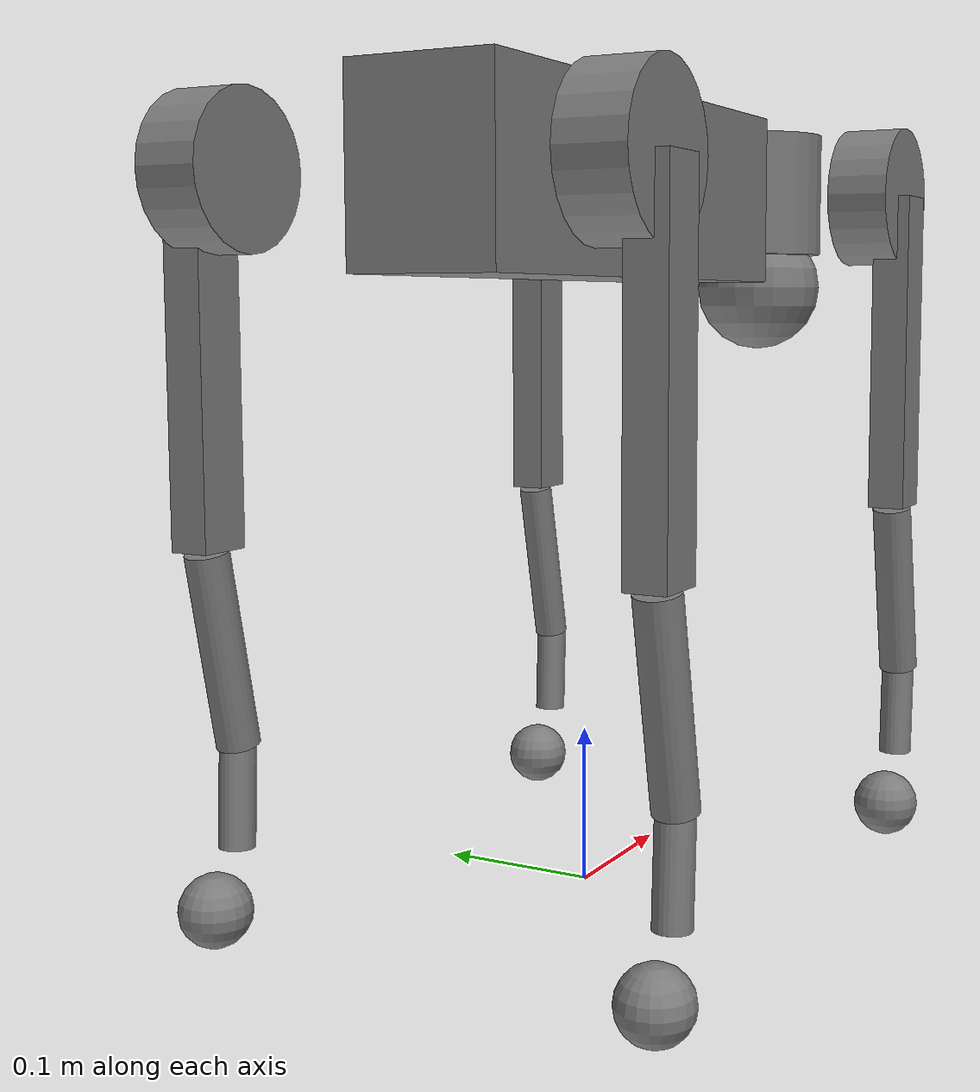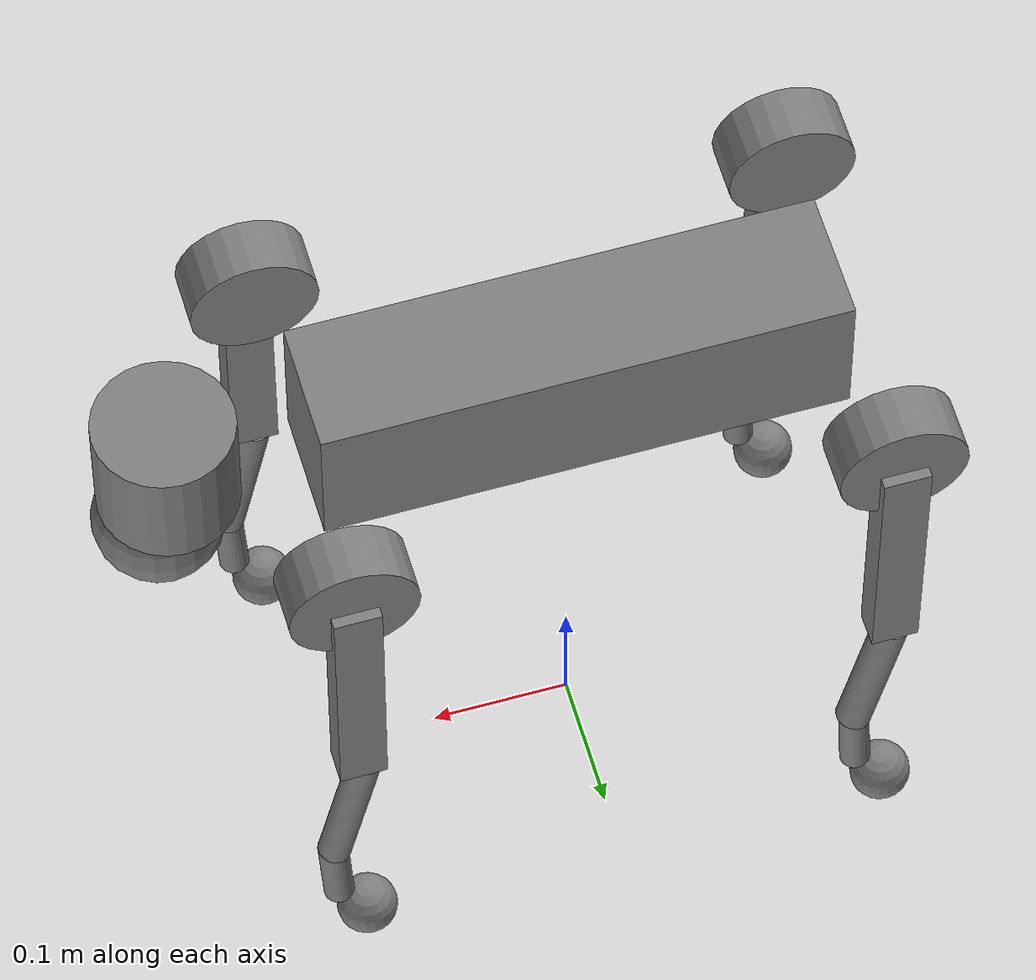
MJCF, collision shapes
<mujoco model="go2">
  <compiler angle="radian" autolimits="true"/>
  <option gravity="0 0 0"/>
  <option cone="elliptic" impratio="100"/>

  <default>
      <default class="abduction">
        <joint axis="1 0 0" range="-1.0472 1.0472" damping="2" armature="0.01" frictionloss="0.2"/>
        <geom friction="0.6" margin="0.001" condim="1"/>
        <motor ctrlrange="-23.7 23.7"/>
      </default>
      <default class="hip">
        <joint axis="0 1 0" damping="2" armature="0.01" frictionloss="0.2" range="-1.5708 3.4907"/>
        <geom friction="0.6" margin="0.001" condim="1"/>
        <motor ctrlrange="-23.7 23.7"/>
      </default>
      <default class="front_hip">
        <joint axis="0 1 0" damping="2" armature="0.01" frictionloss="0.2" range="-1.5708 3.4907"/>
        <geom friction="0.6" margin="0.001" condim="1"/>
        <motor ctrlrange="-23.7 23.7"/>
      </default>
      <default class="back_hip">
        <joint axis="0 1 0" damping="2" armature="0.01" frictionloss="0.2" range="-0.5236 4.5379"/>
        <geom friction="0.6" margin="0.001" condim="1"/>
        <motor ctrlrange="-23.7 23.7"/>
      </default>
      <default class="knee">
        <joint axis="0 1 0" damping="2" armature="0.01" frictionloss="0.2" range="-2.7227 -0.83776"/>
        <motor ctrlrange="-45.43 45.43"/>
        <geom friction="0.6" margin="0.001" condim="1"/>
      </default>
      <default class="visual">
        <geom type="mesh" contype="0" conaffinity="0" group="1" friction="0.6" margin="0.001" condim="1"/>
      </default>
      <default class="collision">
        <geom friction="0.6" margin="0.001" condim="1" group="0"/>
      </default>
      <default class="foot">
        <geom size="0.022" pos="-0.002 0 -0.213" priority="1" solimp="0.015 1 0.022" group="0" condim="6"
            friction="0.8 0.02 0.01" margin="0.001" />
      </default>
  </default>

  <asset>
    <material name="metal" rgba=".9 .95 .95 1"/>
    <material name="black" rgba="0 0 0 1"/>
    <material name="white" rgba="1 1 1 1"/>
    <material name="gray" rgba="0.671705 0.692426 0.774270 1"/>

    <mesh file="meshes/base_0.obj" name="base_0"/>
    <mesh file="meshes/base_1.obj" name="base_1"/>
    <mesh file="meshes/base_2.obj" name="base_2"/>
    <mesh file="meshes/base_3.obj" name="base_3"/>
    <mesh file="meshes/base_4.obj" name="base_4"/>
    <mesh file="meshes/hip_0.obj" name="hip_0"/>
    <mesh file="meshes/hip_1.obj" name="hip_1"/>
    <mesh file="meshes/thigh_0.obj" name="thigh_0"/>
    <mesh file="meshes/thigh_1.obj" name="thigh_1"/>
    <mesh file="meshes/thigh_mirror_0.obj" name="thigh_mirror_0"/>
    <mesh file="meshes/thigh_mirror_1.obj" name="thigh_mirror_1"/>
    <mesh file="meshes/calf_0.obj" name="calf_0"/>
    <mesh file="meshes/calf_1.obj" name="calf_1"/>
    <mesh file="meshes/calf_mirror_0.obj" name="calf_mirror_0"/>
    <mesh file="meshes/calf_mirror_1.obj" name="calf_mirror_1"/>
    <mesh file="meshes/foot.obj" name="foot"/>
  </asset>

  <worldbody>
    <body name="body" pos="0 0 0.445">
      <inertial pos="0.021112 0 -0.005366" quat="-0.000543471 0.713435 -0.00173769 0.700719" mass="6.921"
        diaginertia="0.107027 0.0980771 0.0244531"/>
      <freejoint/>
      <geom mesh="base_0" material="black" class="visual"/>
      <geom mesh="base_1" material="black" class="visual"/>
      <geom mesh="base_2" material="black" class="visual"/>
      <geom mesh="base_3" material="white" class="visual"/>
      <geom mesh="base_4" material="gray" class="visual"/>
      <geom size="0.1881 0.04675 0.057" type="box" class="collision"/>
      <geom size="0.05 0.045" pos="0.285 0 0.01" type="cylinder" class="collision"/>
      <geom size="0.047" pos="0.293 0 -0.06" class="collision"/>
      <site name="imu" pos="-0.02557 0 0.04232"/>

        <body name="fixed_support" pos="0.085 0 0.07">
				<body name="support" pos="0.0 0.0 0.0">
              <!-- add robot here -->
              <site name="center" type="sphere" pos="0 0 0" size="0.01" group="1" rgba="0 0 0 0"/>
          </body>
      </body>

      <!-- FR leg -->
      <body name="FR_leg">
        <site name="FR_center" pos="0 0 0" size="0.01" rgba="1 0.3 0.3 1" group="2"/>
        <body name="FR_hip" pos="0.1934 -0.0465 0">
          <inertial pos="-0.0054 -0.00194 -0.000105" quat="0.498237 0.505462 0.499245 0.497014" mass="0.678"
            diaginertia="0.00088403 0.000596003 0.000479967"/>
          <joint name="FR_hip_leg_joint" class="abduction"/>
          <geom mesh="hip_0" material="metal" class="visual" quat="4.63268e-05 1 0 0"/>
          <geom mesh="hip_1" material="gray" class="visual" quat="4.63268e-05 1 0 0"/>
          <geom size="0.046 0.02" pos="0 -0.08 0" quat="0.707107 0.707107 0 0" type="cylinder" class="collision"/>
          <body name="FR_thigh" pos="0 -0.0955 0">
            <inertial pos="-0.00374 0.0223 -0.0327" quat="0.551623 -0.0200632 0.0847635 0.829533" mass="1.152"
              diaginertia="0.00594973 0.00584149 0.000878787"/>
            <joint name="FR_thigh_leg_joint" class="front_hip"/>
            <geom mesh="thigh_mirror_0" material="metal" class="visual"/>
            <geom mesh="thigh_mirror_1" material="gray" class="visual"/>
            <geom size="0.1065 0.01225 0.017" pos="0 0 -0.1065" quat="0.707107 0 0.707107 0" type="box" class="collision"/>
            <body name="FR_calf" pos="0 0 -0.213">
              <inertial pos="0.00629595 0.000622121 -0.141417" quat="0.703508 -0.00450087 0.00154099 0.710672"
                mass="0.241352" diaginertia="0.0014901 0.00146356 5.31397e-05"/>
              <joint name="FR_calf_leg_joint" class="knee"/>
              <geom mesh="calf_mirror_0" material="gray" class="visual"/>
              <geom mesh="calf_mirror_1" material="black" class="visual"/>
              <geom size="0.013 0.06" pos="0.01 0 -0.06" quat="0.995004 0 -0.0998334 0" type="cylinder" class="collision"/>
              <geom size="0.011 0.0325" pos="0.02 0 -0.148" quat="0.999688 0 0.0249974 0" type="cylinder" class="collision"/>
              <geom pos="0 0 -0.213" mesh="foot" class="visual" material="black"/>
              <geom name="FR" class="foot"/>
            </body>
          </body>
        </body>
      </body>

      <!-- FL Leg -->
      <body name="FL_leg">
        <site name="FL_center" pos="0 0 0" size="0.01" rgba="1 0.3 0.3 1" group="2"/>
        <body name="FL_hip" pos="0.1934 0.0465 0">
          <inertial pos="-0.0054 0.00194 -0.000105" quat="0.497014 0.499245 0.505462 0.498237" mass="0.678"
            diaginertia="0.00088403 0.000596003 0.000479967"/>
          <joint name="FL_hip_leg_joint" class="abduction"/>
          <geom mesh="hip_0" material="metal" class="visual"/>
          <geom mesh="hip_1" material="gray" class="visual"/>
          <geom size="0.046 0.02" pos="0 0.08 0" quat="1 1 0 0" type="cylinder" class="collision"/>
          <body name="FL_thigh" pos="0 0.0955 0">
            <inertial pos="-0.00374 -0.0223 -0.0327" quat="0.829533 0.0847635 -0.0200632 0.551623" mass="1.152"
              diaginertia="0.00594973 0.00584149 0.000878787"/>
            <joint name="FL_thigh_leg_joint" class="front_hip"/>
            <geom mesh="thigh_0" material="metal" class="visual"/>
            <geom mesh="thigh_1" material="gray" class="visual"/>
            <geom size="0.1065 0.01225 0.017" pos="0 0 -0.1065" quat="0.707107 0 0.707107 0" type="box" class="collision"/>
            <body name="FL_calf" pos="0 0 -0.213">
              <inertial pos="0.00629595 -0.000622121 -0.141417" quat="0.710672 0.00154099 -0.00450087 0.703508"
                mass="0.241352" diaginertia="0.0014901 0.00146356 5.31397e-05"/>
              <joint name="FL_calf_leg_joint" class="knee"/>
              <geom mesh="calf_0" material="gray" class="visual"/>
              <geom mesh="calf_1" material="black" class="visual"/>
              <geom size="0.012 0.06" pos="0.008 0 -0.06" quat="0.994493 0 -0.104807 0" type="cylinder" class="collision"/>
              <geom size="0.011 0.0325" pos="0.02 0 -0.148" quat="0.999688 0 0.0249974 0" type="cylinder" class="collision"/>
              <geom pos="0 0 -0.213" mesh="foot" class="visual" material="black"/>
              <geom name="FL" class="foot"/>
            </body>
          </body>
        </body>
      </body>

      <!-- RR Leg -->
      <body name="RR_leg">
        <site name="RR_center" pos="0 0 0" size="0.01" rgba="1 0.3 0.3 1" group="2"/>
        <body name="RR_hip" pos="-0.1934 -0.0465 0">
          <inertial pos="0.0054 -0.00194 -0.000105" quat="0.499245 0.497014 0.498237 0.505462" mass="0.678"
            diaginertia="0.00088403 0.000596003 0.000479967"/>
          <joint name="RR_hip_leg_joint" class="abduction"/>
          <geom mesh="hip_0" material="metal" class="visual" quat="2.14617e-09 4.63268e-05 4.63268e-05 -1"/>
          <geom mesh="hip_1" material="gray" class="visual" quat="2.14617e-09 4.63268e-05 4.63268e-05 -1"/>
          <geom size="0.046 0.02" pos="0 -0.08 0" quat="0.707107 0.707107 0 0" type="cylinder" class="collision"/>
          <body name="RR_thigh" pos="0 -0.0955 0">
            <inertial pos="-0.00374 0.0223 -0.0327" quat="0.551623 -0.0200632 0.0847635 0.829533" mass="1.152"
              diaginertia="0.00594973 0.00584149 0.000878787"/>
            <joint name="RR_thigh_leg_joint" class="back_hip"/>
            <geom mesh="thigh_mirror_0" material="metal" class="visual"/>
            <geom mesh="thigh_mirror_1" material="gray" class="visual"/>
            <geom size="0.1065 0.01225 0.017" pos="0 0 -0.1065" quat="0.707107 0 0.707107 0" type="box" class="collision"/>
            <body name="RR_calf" pos="0 0 -0.213">
              <inertial pos="0.00629595 0.000622121 -0.141417" quat="0.703508 -0.00450087 0.00154099 0.710672"
                mass="0.241352" diaginertia="0.0014901 0.00146356 5.31397e-05"/>
              <joint name="RR_calf_leg_joint" class="knee"/>
              <geom mesh="calf_mirror_0" material="gray" class="visual"/>
              <geom mesh="calf_mirror_1" material="black" class="visual"/>
              <geom size="0.013 0.06" pos="0.01 0 -0.06" quat="0.995004 0 -0.0998334 0" type="cylinder" class="collision"/>
              <geom size="0.011 0.0325" pos="0.02 0 -0.148" quat="0.999688 0 0.0249974 0" type="cylinder" class="collision"/>
              <geom pos="0 0 -0.213" mesh="foot" class="visual" material="black"/>
              <geom name="RR" class="foot"/>
            </body>
          </body>
        </body>
      </body>
      <!-- RL Leg -->

      <body name="RL_leg">
        <site name="RL_center" pos="0 0 0" size="0.01" rgba="1 0.3 0.3 1" group="2"/>
        <body name="RL_hip" pos="-0.1934 0.0465 0">
          <inertial pos="0.0054 0.00194 -0.000105" quat="0.505462 0.498237 0.497014 0.499245" mass="0.678"
            diaginertia="0.00088403 0.000596003 0.000479967"/>
          <joint name="RL_hip_leg_joint" class="abduction"/>
          <geom mesh="hip_0" material="metal" class="visual" quat="4.63268e-05 0 1 0"/>
          <geom mesh="hip_1" material="gray" class="visual" quat="4.63268e-05 0 1 0"/>
          <geom size="0.046 0.02" pos="0 0.08 0" quat="0.707107 0.707107 0 0" type="cylinder" class="collision"/>
          <body name="RL_thigh" pos="0 0.0955 0">
            <inertial pos="-0.00374 -0.0223 -0.0327" quat="0.829533 0.0847635 -0.0200632 0.551623" mass="1.152"
              diaginertia="0.00594973 0.00584149 0.000878787"/>
            <joint name="RL_thigh_leg_joint" class="back_hip"/>
            <geom mesh="thigh_0" material="metal" class="visual"/>
            <geom mesh="thigh_1" material="gray" class="visual"/>
            <geom size="0.1065 0.01225 0.017" pos="0 0 -0.1065" quat="0.707107 0 0.707107 0" type="box" class="collision"/>
            <body name="RL_calf" pos="0 0 -0.213">
              <inertial pos="0.00629595 -0.000622121 -0.141417" quat="0.710672 0.00154099 -0.00450087 0.703508"
                mass="0.241352" diaginertia="0.0014901 0.00146356 5.31397e-05"/>
              <joint name="RL_calf_leg_joint" class="knee"/>
              <geom mesh="calf_0" material="gray" class="visual"/>
              <geom mesh="calf_1" material="black" class="visual"/>
              <geom size="0.013 0.06" pos="0.01 0 -0.06" quat="0.995004 0 -0.0998334 0" type="cylinder" class="collision"/>
              <geom size="0.011 0.0325" pos="0.02 0 -0.148" quat="0.999688 0 0.0249974 0" type="cylinder" class="collision"/>
              <geom pos="0 0 -0.213" mesh="foot" class="visual" material="black"/>
              <geom name="RL" class="foot"/>
            </body>
          </body>
        </body>
      </body>

    </body>
  </worldbody>

  <actuator>
    <motor class="abduction" name="FR_hip_leg" joint="FR_hip_leg_joint"/>
    <motor class="hip" name="FR_thigh_leg" joint="FR_thigh_leg_joint"/>
    <motor class="knee" name="FR_calf_leg" joint="FR_calf_leg_joint"/>

    <motor class="abduction" name="FL_hip_leg" joint="FL_hip_leg_joint"/>
    <motor class="hip" name="FL_thigh_leg" joint="FL_thigh_leg_joint"/>
    <motor class="knee" name="FL_calf_leg" joint="FL_calf_leg_joint"/>

    <motor class="abduction" name="RR_hip_leg" joint="RR_hip_leg_joint"/>
    <motor class="hip" name="RR_thigh_leg" joint="RR_thigh_leg_joint"/>
    <motor class="knee" name="RR_calf_leg" joint="RR_calf_leg_joint"/>

    <motor class="abduction" name="RL_hip_leg" joint="RL_hip_leg_joint"/>
    <motor class="hip" name="RL_thigh_leg" joint="RL_thigh_leg_joint"/>
    <motor class="knee" name="RL_calf_leg" joint="RL_calf_leg_joint"/>
  </actuator>

  <keyframe>
    <key name="home" qpos="0 0 0.27 1 0 0 0 0 0.9 -1.8 0 0.9 -1.8 0 0.9 -1.8 0 0.9 -1.8"
      ctrl="0 0.9 -1.8 0 0.9 -1.8 0 0.9 -1.8 0 0.9 -1.8"/>
  </keyframe>
</mujoco>
